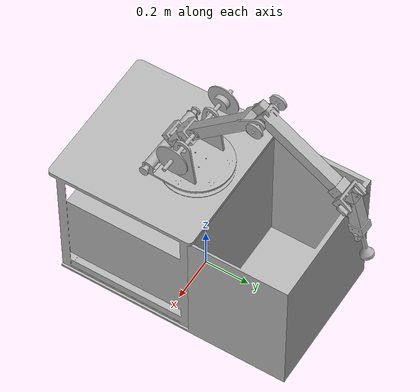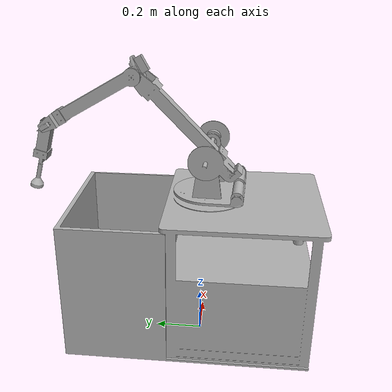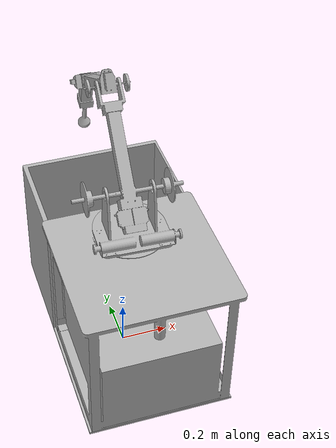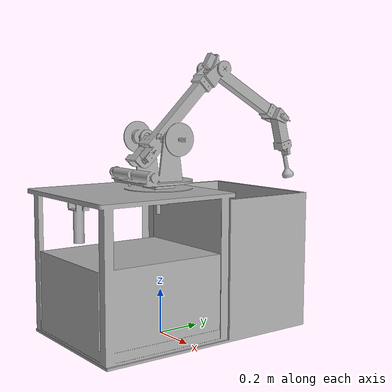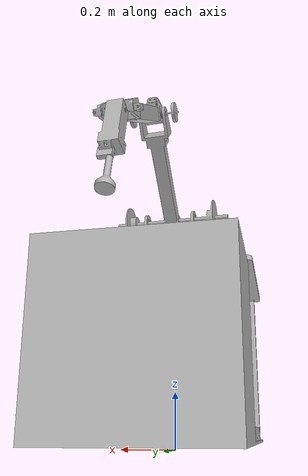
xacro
<?xml version="1.0"?>
<robot xmlns:xacro="http://www.ros.org/wiki/xacro" name="vinci">
    <xacro:arg name="initial_positions_file" default="initial_positions.yaml" />

    <!-- Import vinci urdf file -->
    <xacro:include filename="$(find vinci_description)/urdf/vinci.xacro" />

    <!-- Import control_xacro -->
    <xacro:include filename="vinci.ros2_control.xacro" />

    <xacro:vinci_ros2_control name="FakeSystem" initial_positions_file="$(arg initial_positions_file)"/>

</robot>

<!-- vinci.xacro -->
<robot name="vinci" xmlns:xacro="http://www.ros.org/wiki/xacro">

<xacro:include filename="$(find vinci_description)/urdf/materials.xacro" />
<xacro:include filename="$(find vinci_description)/urdf/vinci.trans" />
<xacro:include filename="$(find vinci_description)/urdf/vinci.gazebo" />
<link name="base_link">
  <inertial>
    <origin xyz="-0.002591915221215739 0.27716277613723017 0.26142292755445995" rpy="0 0 0"/>
    <mass value="17.97264000000002"/>
    <inertia ixx="1.833137" iyy="1.542102" izz="1.955592" ixy="0.030245" iyz="-0.287683" ixz="0.030749"/>
  </inertial>
  <visual>
    <origin xyz="0 0 0" rpy="0 0 0"/>
    <geometry>
      <mesh filename="file://$(find vinci_description)/meshes/base_link.stl" scale="0.001 0.001 0.001"/>
    </geometry>
    <material name="silver"/>
  </visual>
  <collision>
    <origin xyz="0 0 0" rpy="0 0 0"/>
    <geometry>
      <mesh filename="file://$(find vinci_description)/meshes/base_link.stl" scale="0.001 0.001 0.001"/>
    </geometry>
  </collision>
</link>

<link name="foundation__base_1">
  <inertial>
    <origin xyz="-0.0018879295779571856 0.0011434699363045142 0.2094366691466706" rpy="0 0 0"/>
    <mass value="920.4727092380526"/>
    <inertia ixx="48.985183" iyy="41.31025" izz="48.576431" ixy="0.000622" iyz="0.048602" ixz="-0.042143"/>
  </inertial>
  <visual>
    <origin xyz="-0.022226 0.17503 -0.03036" rpy="0 0 0"/>
    <geometry>
      <mesh filename="file://$(find vinci_description)/meshes/foundation__base_1.stl" scale="0.001 0.001 0.001"/>
    </geometry>
    <material name="silver"/>
  </visual>
  <collision>
    <origin xyz="-0.022226 0.17503 -0.03036" rpy="0 0 0"/>
    <geometry>
      <mesh filename="file://$(find vinci_description)/meshes/foundation__base_1.stl" scale="0.001 0.001 0.001"/>
    </geometry>
  </collision>
</link>

<link name="foundation_fork_1">
  <inertial>
    <origin xyz="-0.0014668932459716358 -0.033763459026948925 0.02710106355580577" rpy="0 0 0"/>
    <mass value="2.0983050311927904"/>
    <inertia ixx="0.018488" iyy="0.020902" izz="0.024893" ixy="8.8e-05" iyz="0.001405" ixz="5.5e-05"/>
  </inertial>
  <visual>
    <origin xyz="-0.022226 0.02503 -0.67136" rpy="0 0 0"/>
    <geometry>
      <mesh filename="file://$(find vinci_description)/meshes/foundation_fork_1.stl" scale="0.001 0.001 0.001"/>
    </geometry>
    <material name="silver"/>
  </visual>
  <collision>
    <origin xyz="-0.022226 0.02503 -0.67136" rpy="0 0 0"/>
    <geometry>
      <mesh filename="file://$(find vinci_description)/meshes/foundation_fork_1.stl" scale="0.001 0.001 0.001"/>
    </geometry>
  </collision>
</link>

<link name="forearm_1">
  <inertial>
    <origin xyz="-0.09540816942808257 0.04056320814949928 0.03597232808470885" rpy="0 0 0"/>
    <mass value="1.1580779637924898"/>
    <inertia ixx="0.036195" iyy="0.028689" izz="0.028609" ixy="-0.00031" iyz="-0.017574" ixz="-0.000725"/>
  </inertial>
  <visual>
    <origin xyz="-0.112149 0.028742 -0.87636" rpy="0 0 0"/>
    <geometry>
      <mesh filename="file://$(find vinci_description)/meshes/forearm_1.stl" scale="0.001 0.001 0.001"/>
    </geometry>
    <material name="silver"/>
  </visual>
  <collision>
    <origin xyz="-0.112149 0.028742 -0.87636" rpy="0 0 0"/>
    <geometry>
      <mesh filename="file://$(find vinci_description)/meshes/forearm_1.stl" scale="0.001 0.001 0.001"/>
    </geometry>
  </collision>
</link>

<link name="hand_1">
  <inertial>
    <origin xyz="-0.03992438153829223 0.07143780356772123 -0.03370282693749749" rpy="0 0 0"/>
    <mass value="0.39288844288416375"/>
    <inertia ixx="0.008986" iyy="0.003142" izz="0.007028" ixy="-0.000242" iyz="0.003845" ixz="0.000159"/>
  </inertial>
  <visual>
    <origin xyz="-0.067591 -0.273874 -1.17688" rpy="0 0 0"/>
    <geometry>
      <mesh filename="file://$(find vinci_description)/meshes/hand_1.stl" scale="0.001 0.001 0.001"/>
    </geometry>
    <material name="silver"/>
  </visual>
  <collision>
    <origin xyz="-0.067591 -0.273874 -1.17688" rpy="0 0 0"/>
    <geometry>
      <mesh filename="file://$(find vinci_description)/meshes/hand_1.stl" scale="0.001 0.001 0.001"/>
    </geometry>
  </collision>
</link>

<link name="hand_fork_1">
  <inertial>
    <origin xyz="0.0010448303655635274 0.025305759141412087 -0.014622327756326103" rpy="0 0 0"/>
    <mass value="0.19515039122298017"/>
    <inertia ixx="0.000118" iyy="0.00042" izz="0.000445" ixy="1.3e-05" iyz="2.1e-05" ixz="1e-06"/>
  </inertial>
  <visual>
    <origin xyz="-0.038719 -0.613103 -0.98188" rpy="0 0 0"/>
    <geometry>
      <mesh filename="file://$(find vinci_description)/meshes/hand_fork_1.stl" scale="0.001 0.001 0.001"/>
    </geometry>
    <material name="silver"/>
  </visual>
  <collision>
    <origin xyz="-0.038719 -0.613103 -0.98188" rpy="0 0 0"/>
    <geometry>
      <mesh filename="file://$(find vinci_description)/meshes/hand_fork_1.stl" scale="0.001 0.001 0.001"/>
    </geometry>
  </collision>
</link>

<link name="end_effector_1">
  <inertial>
    <origin xyz="-0.021213988130878637 0.048735041421318015 -0.17836487707577653" rpy="0 0 0"/>
    <mass value="0.5354810781353959"/>
    <inertia ixx="0.003599" iyy="0.003392" izz="0.000502" ixy="-2e-06" iyz="0.000835" ixz="9e-06"/>
  </inertial>
  <visual>
    <origin xyz="-0.065658 -0.659557 -0.954397" rpy="0 0 0"/>
    <geometry>
      <mesh filename="file://$(find vinci_description)/meshes/end_effector_1.stl" scale="0.001 0.001 0.001"/>
    </geometry>
    <material name="silver"/>
  </visual>
  <collision>
    <origin xyz="-0.065658 -0.659557 -0.954397" rpy="0 0 0"/>
    <geometry>
      <mesh filename="file://$(find vinci_description)/meshes/end_effector_1.stl" scale="0.001 0.001 0.001"/>
    </geometry>
  </collision>
</link>

<joint name="foundation_base" type="fixed">
  <origin xyz="0.022226 -0.17503 0.03036" rpy="0 0 0"/>
  <parent link="base_link"/>
  <child link="foundation__base_1"/>
</joint>

<joint name="foundation_fork" type="continuous">
  <origin xyz="0.0 0.15 0.641" rpy="0 0 0"/>
  <parent link="foundation__base_1"/>
  <child link="foundation_fork_1"/>
  <axis xyz="-0.0 -0.0 1.0"/>
</joint>

<joint name="fork_forearm" type="revolute">
  <origin xyz="0.089923 -0.003712 0.205" rpy="0 0 0"/>
  <parent link="foundation_fork_1"/>
  <child link="forearm_1"/>
  <axis xyz="-0.999149 0.041238 -0.0"/>
  <limit upper="1.396263" lower="-0.174533" effort="100" velocity="100"/>
</joint>

<joint name="forearm_hand" type="revolute">
  <origin xyz="-0.044558 0.302616 0.30052" rpy="0 0 0"/>
  <parent link="forearm_1"/>
  <child link="hand_1"/>
  <axis xyz="-0.999149 0.041238 -0.0"/>
  <limit upper="0.698132" lower="-0.698132" effort="100" velocity="100"/>
</joint>

<joint name="hand_fork" type="revolute">
  <origin xyz="-0.028872 0.339229 -0.195" rpy="0 0 0"/>
  <parent link="hand_1"/>
  <child link="hand_fork_1"/>
  <axis xyz="-0.035713 -0.865289 0.5"/>
  <limit upper="1.570796" lower="-1.570796" effort="100" velocity="100"/>
</joint>

<joint name="fork_end" type="revolute">
  <origin xyz="0.026939 0.046454 -0.027483" rpy="0 0 0"/>
  <parent link="hand_fork_1"/>
  <child link="end_effector_1"/>
  <axis xyz="-0.999116 0.042013 0.001343"/>
  <limit upper="1.570796" lower="-1.570796" effort="100" velocity="100"/>
</joint>

</robot>

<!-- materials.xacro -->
<robot name="vinci" xmlns:xacro="http://www.ros.org/wiki/xacro" >

<material name="silver">
  <color rgba="0.700 0.700 0.700 1.000"/>
</material>

</robot>

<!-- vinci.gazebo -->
<robot name="vinci" xmlns:xacro="http://www.ros.org/wiki/xacro" >

<xacro:property name="body_color" value="Gazebo/Silver" />

<gazebo>
  <plugin name="control" filename="libgazebo_ros_control.so"/>
</gazebo>
<gazebo reference="base_link">
  <material>${body_color}</material>
  <mu1>0.2</mu1>
  <mu2>0.2</mu2>
  <self_collide>true</self_collide>
  <gravity>true</gravity>
</gazebo>

<gazebo reference="foundation__base_1">
  <material>${body_color}</material>
  <mu1>0.2</mu1>
  <mu2>0.2</mu2>
  <self_collide>true</self_collide>
</gazebo>

<gazebo reference="foundation_fork_1">
  <material>${body_color}</material>
  <mu1>0.2</mu1>
  <mu2>0.2</mu2>
  <self_collide>true</self_collide>
</gazebo>

<gazebo reference="forearm_1">
  <material>${body_color}</material>
  <mu1>0.2</mu1>
  <mu2>0.2</mu2>
  <self_collide>true</self_collide>
</gazebo>

<gazebo reference="hand_1">
  <material>${body_color}</material>
  <mu1>0.2</mu1>
  <mu2>0.2</mu2>
  <self_collide>true</self_collide>
</gazebo>

<gazebo reference="hand_fork_1">
  <material>${body_color}</material>
  <mu1>0.2</mu1>
  <mu2>0.2</mu2>
  <self_collide>true</self_collide>
</gazebo>

<gazebo reference="end_effector_1">
  <material>${body_color}</material>
  <mu1>0.2</mu1>
  <mu2>0.2</mu2>
  <self_collide>true</self_collide>
</gazebo>

</robot>
